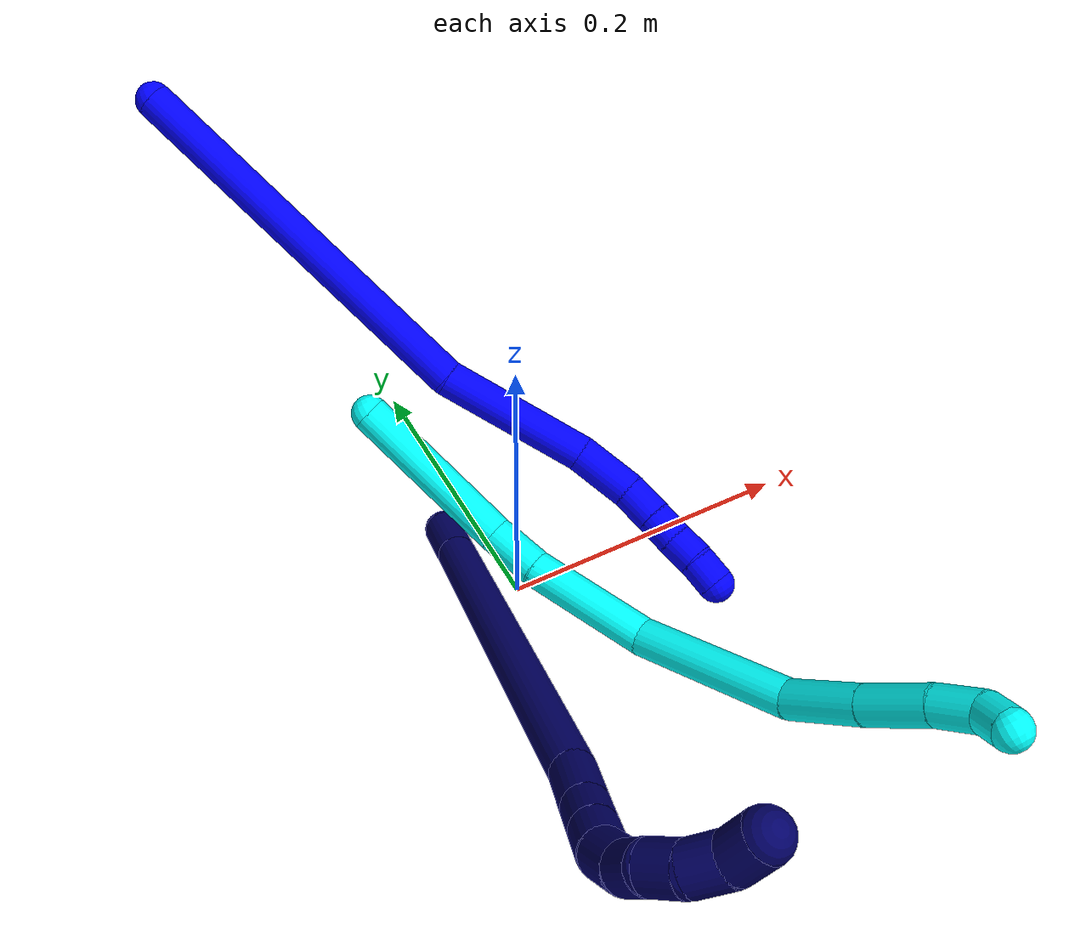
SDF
<sdf version="1.7">
 <world name="default">
  <model name="1">
   <static>0</static>
   <link name="1">
    <collision name="collision-cylinder-e_1_1_4">
     <pose>0.022245 -0.037599 -0.127592 2.85502 0.165702 1.04455</pose>
     <geometry><cylinder><radius>0.0125</radius><length>0.269728</length></cylinder></geometry>
     <surface>
      <friction><ode><mu>1.16</mu><mu2>1.16</mu2><slip1>0</slip1><slip2>0</slip2></ode></friction>
      <contact><ode><kp>1e+06</kp><kd>1</kd><max_vel>0</max_vel><min_depth>0.001</min_depth></ode></contact>
     </surface>
    </collision>
    <visual name="visual-cylinder-e_1_1_4">
     <pose>0.022245 -0.037599 -0.127592 2.85502 0.165702 1.04455</pose>
     <geometry><cylinder><radius>0.0125</radius><length>0.269728</length></cylinder></geometry>
     <material><ambient>0 0 1 1</ambient></material>
    </visual>
    <collision name="collision-cylinder-e_2_4_5">
     <pose>0.063211 -0.095388 -0.299077 2.71047 0.369663 1.41346</pose>
     <geometry><cylinder><radius>0.0125</radius><length>0.103628</length></cylinder></geometry>
     <surface>
      <friction><ode><mu>1.16</mu><mu2>1.16</mu2><slip1>0</slip1><slip2>0</slip2></ode></friction>
      <contact><ode><kp>1e+06</kp><kd>1</kd><max_vel>0</max_vel><min_depth>0.001</min_depth></ode></contact>
     </surface>
    </collision>
    <visual name="visual-cylinder-e_2_4_5">
     <pose>0.063211 -0.095388 -0.299077 2.71047 0.369663 1.41346</pose>
     <geometry><cylinder><radius>0.0125</radius><length>0.103628</length></cylinder></geometry>
     <material><ambient>0 0 1 1</ambient></material>
    </visual>
    <collision name="collision-cylinder-e_3_5_6">
     <pose>0.084246 -0.124979 -0.361349 2.66876 0.11165 0.455844</pose>
     <geometry><cylinder><radius>0.0125</radius><length>0.041546</length></cylinder></geometry>
     <surface>
      <friction><ode><mu>1.16</mu><mu2>1.16</mu2><slip1>0</slip1><slip2>0</slip2></ode></friction>
      <contact><ode><kp>1e+06</kp><kd>1</kd><max_vel>0</max_vel><min_depth>0.001</min_depth></ode></contact>
     </surface>
    </collision>
    <visual name="visual-cylinder-e_3_5_6">
     <pose>0.084246 -0.124979 -0.361349 2.66876 0.11165 0.455844</pose>
     <geometry><cylinder><radius>0.0125</radius><length>0.041546</length></cylinder></geometry>
     <material><ambient>0 0 1 1</ambient></material>
    </visual>
    <collision name="collision-cylinder-e_4_6_7">
     <pose>0.08599 -0.139344 -0.390647 2.71499 -0.047545 -0.218676</pose>
     <geometry><cylinder><radius>0.0125</radius><length>0.024016</length></cylinder></geometry>
     <surface>
      <friction><ode><mu>1.16</mu><mu2>1.16</mu2><slip1>0</slip1><slip2>0</slip2></ode></friction>
      <contact><ode><kp>1e+06</kp><kd>1</kd><max_vel>0</max_vel><min_depth>0.001</min_depth></ode></contact>
     </surface>
    </collision>
    <visual name="visual-cylinder-e_4_6_7">
     <pose>0.08599 -0.139344 -0.390647 2.71499 -0.047545 -0.218676</pose>
     <geometry><cylinder><radius>0.0125</radius><length>0.024016</length></cylinder></geometry>
     <material><ambient>0 0 1 1</ambient></material>
    </visual>
    <collision name="collision-cylinder-e_5_7_8">
     <pose>0.085003 -0.148389 -0.411217 2.74144 -0.039653 -0.194946</pose>
     <geometry><cylinder><radius>0.0125</radius><length>0.020974</length></cylinder></geometry>
     <surface>
      <friction><ode><mu>1.16</mu><mu2>1.16</mu2><slip1>0</slip1><slip2>0</slip2></ode></friction>
      <contact><ode><kp>1e+06</kp><kd>1</kd><max_vel>0</max_vel><min_depth>0.001</min_depth></ode></contact>
     </surface>
    </collision>
    <visual name="visual-cylinder-e_5_7_8">
     <pose>0.085003 -0.148389 -0.411217 2.74144 -0.039653 -0.194946</pose>
     <geometry><cylinder><radius>0.0125</radius><length>0.020974</length></cylinder></geometry>
     <material><ambient>0 0 1 1</ambient></material>
    </visual>
    <collision name="collision-cylinder-e_6_8_9">
     <pose>0.083624 -0.15733 -0.429576 2.63262 -0.096353 -0.366539</pose>
     <geometry><cylinder><radius>0.0125</radius><length>0.020037</length></cylinder></geometry>
     <surface>
      <friction><ode><mu>1.16</mu><mu2>1.16</mu2><slip1>0</slip1><slip2>0</slip2></ode></friction>
      <contact><ode><kp>1e+06</kp><kd>1</kd><max_vel>0</max_vel><min_depth>0.001</min_depth></ode></contact>
     </surface>
    </collision>
    <visual name="visual-cylinder-e_6_8_9">
     <pose>0.083624 -0.15733 -0.429576 2.63262 -0.096353 -0.366539</pose>
     <geometry><cylinder><radius>0.0125</radius><length>0.020037</length></cylinder></geometry>
     <material><ambient>0 0 1 1</ambient></material>
    </visual>
    <collision name="collision-cylinder-e_7_9_2">
     <pose>0.081915 -0.16565 -0.447674 2.78842 -0.074276 -0.410567</pose>
     <geometry><cylinder><radius>0.0125</radius><length>0.020072</length></cylinder></geometry>
     <surface>
      <friction><ode><mu>1.16</mu><mu2>1.16</mu2><slip1>0</slip1><slip2>0</slip2></ode></friction>
      <contact><ode><kp>1e+06</kp><kd>1</kd><max_vel>0</max_vel><min_depth>0.001</min_depth></ode></contact>
     </surface>
    </collision>
    <visual name="visual-cylinder-e_7_9_2">
     <pose>0.081915 -0.16565 -0.447674 2.78842 -0.074276 -0.410567</pose>
     <geometry><cylinder><radius>0.0125</radius><length>0.020072</length></cylinder></geometry>
     <material><ambient>0 0 1 1</ambient></material>
    </visual>
    <collision name="collision-sphere-2">
     <pose>0.08117 -0.169112 -0.457065 0 -0 0</pose>
     <geometry><sphere><radius>0.0125</radius></sphere></geometry>
     <surface>
      <friction><ode><mu>1.16</mu><mu2>1.16</mu2><slip1>0</slip1><slip2>0</slip2></ode></friction>
      <contact><ode><kp>1e+06</kp><kd>1</kd><max_vel>0</max_vel><min_depth>0.001</min_depth></ode></contact>
     </surface>
    </collision>
    <visual name="visual-sphere-2">
     <pose>0.08117 -0.169112 -0.457065 0 -0 0</pose>
     <geometry><sphere><radius>0.0125</radius></sphere></geometry>
     <material><ambient>0 0 1 1</ambient></material>
    </visual>
    <collision name="collision-sphere-9">
     <pose>0.08266 -0.162189 -0.438284 0 -0 0</pose>
     <geometry><sphere><radius>0.0125</radius></sphere></geometry>
     <surface>
      <friction><ode><mu>1.16</mu><mu2>1.16</mu2><slip1>0</slip1><slip2>0</slip2></ode></friction>
      <contact><ode><kp>1e+06</kp><kd>1</kd><max_vel>0</max_vel><min_depth>0.001</min_depth></ode></contact>
     </surface>
    </collision>
    <visual name="visual-sphere-9">
     <pose>0.08266 -0.162189 -0.438284 0 -0 0</pose>
     <geometry><sphere><radius>0.0125</radius></sphere></geometry>
     <material><ambient>0 0 1 1</ambient></material>
    </visual>
    <collision name="collision-sphere-4">
     <pose>0.04449 -0.075197 -0.255184 0 -0 0</pose>
     <geometry><sphere><radius>0.0125</radius></sphere></geometry>
     <surface>
      <friction><ode><mu>1.16</mu><mu2>1.16</mu2><slip1>0</slip1><slip2>0</slip2></ode></friction>
      <contact><ode><kp>1e+06</kp><kd>1</kd><max_vel>0</max_vel><min_depth>0.001</min_depth></ode></contact>
     </surface>
    </collision>
    <visual name="visual-sphere-4">
     <pose>0.04449 -0.075197 -0.255184 0 -0 0</pose>
     <geometry><sphere><radius>0.0125</radius></sphere></geometry>
     <material><ambient>0 0 1 1</ambient></material>
    </visual>
    <collision name="collision-sphere-1">
     <geometry><sphere><radius>0.0125</radius></sphere></geometry>
     <surface>
      <friction><ode><mu>1.16</mu><mu2>1.16</mu2><slip1>0</slip1><slip2>0</slip2></ode></friction>
      <contact><ode><kp>1e+06</kp><kd>1</kd><max_vel>0</max_vel><min_depth>0.001</min_depth></ode></contact>
     </surface>
    </collision>
    <visual name="visual-sphere-1">
     <geometry><sphere><radius>0.0125</radius></sphere></geometry>
     <material><ambient>0 0 1 1</ambient></material>
    </visual>
    <collision name="collision-sphere-8">
     <pose>0.084587 -0.152471 -0.420868 0 -0 0</pose>
     <geometry><sphere><radius>0.0125</radius></sphere></geometry>
     <surface>
      <friction><ode><mu>1.16</mu><mu2>1.16</mu2><slip1>0</slip1><slip2>0</slip2></ode></friction>
      <contact><ode><kp>1e+06</kp><kd>1</kd><max_vel>0</max_vel><min_depth>0.001</min_depth></ode></contact>
     </surface>
    </collision>
    <visual name="visual-sphere-8">
     <pose>0.084587 -0.152471 -0.420868 0 -0 0</pose>
     <geometry><sphere><radius>0.0125</radius></sphere></geometry>
     <material><ambient>0 0 1 1</ambient></material>
    </visual>
    <collision name="collision-sphere-5">
     <pose>0.081931 -0.115578 -0.34297 0 -0 0</pose>
     <geometry><sphere><radius>0.0125</radius></sphere></geometry>
     <surface>
      <friction><ode><mu>1.16</mu><mu2>1.16</mu2><slip1>0</slip1><slip2>0</slip2></ode></friction>
      <contact><ode><kp>1e+06</kp><kd>1</kd><max_vel>0</max_vel><min_depth>0.001</min_depth></ode></contact>
     </surface>
    </collision>
    <visual name="visual-sphere-5">
     <pose>0.081931 -0.115578 -0.34297 0 -0 0</pose>
     <geometry><sphere><radius>0.0125</radius></sphere></geometry>
     <material><ambient>0 0 1 1</ambient></material>
    </visual>
    <collision name="collision-sphere-6">
     <pose>0.08656 -0.134381 -0.379728 0 -0 0</pose>
     <geometry><sphere><radius>0.0125</radius></sphere></geometry>
     <surface>
      <friction><ode><mu>1.16</mu><mu2>1.16</mu2><slip1>0</slip1><slip2>0</slip2></ode></friction>
      <contact><ode><kp>1e+06</kp><kd>1</kd><max_vel>0</max_vel><min_depth>0.001</min_depth></ode></contact>
     </surface>
    </collision>
    <visual name="visual-sphere-6">
     <pose>0.08656 -0.134381 -0.379728 0 -0 0</pose>
     <geometry><sphere><radius>0.0125</radius></sphere></geometry>
     <material><ambient>0 0 1 1</ambient></material>
    </visual>
    <collision name="collision-sphere-7">
     <pose>0.085419 -0.144307 -0.401566 0 -0 0</pose>
     <geometry><sphere><radius>0.0125</radius></sphere></geometry>
     <surface>
      <friction><ode><mu>1.16</mu><mu2>1.16</mu2><slip1>0</slip1><slip2>0</slip2></ode></friction>
      <contact><ode><kp>1e+06</kp><kd>1</kd><max_vel>0</max_vel><min_depth>0.001</min_depth></ode></contact>
     </surface>
    </collision>
    <visual name="visual-sphere-7">
     <pose>0.085419 -0.144307 -0.401566 0 -0 0</pose>
     <geometry><sphere><radius>0.0125</radius></sphere></geometry>
     <material><ambient>0 0 1 1</ambient></material>
    </visual>
    <inertial>
     <pose>0.046437 -0.076309 -0.23204 0 -0 0</pose>
     <mass>0.5</mass>
     <inertia>
      <ixx>0.002343</ixx>
      <ixy>0</ixy>
      <ixz>0</ixz>
      <iyy>0.000743</iyy>
      <iyz>0</iyz>
      <izz>0.00016</izz>
     </inertia>
    </inertial>
   </link>
   <pose>-0.104987 0.320848 0.228317 -0.785567 0.234089 0.444727</pose>
  </model>
  <model name="3">
   <static>0</static>
   <link name="3">
    <collision name="collision-cylinder-e_1_1_4">
     <pose>-0.001387 -0.022854 0.053399 0.404406 -0.023867 -0.004893</pose>
     <geometry><cylinder><radius>0.0125</radius><length>0.116201</length></cylinder></geometry>
     <surface>
      <friction><ode><mu>1.16</mu><mu2>1.16</mu2><slip1>0</slip1><slip2>0</slip2></ode></friction>
      <contact><ode><kp>1e+06</kp><kd>1</kd><max_vel>0</max_vel><min_depth>0.001</min_depth></ode></contact>
     </surface>
    </collision>
    <visual name="visual-cylinder-e_1_1_4">
     <pose>-0.001387 -0.022854 0.053399 0.404406 -0.023867 -0.004893</pose>
     <geometry><cylinder><radius>0.0125</radius><length>0.116201</length></cylinder></geometry>
     <material><ambient>0.003922 1 0.996078 1</ambient></material>
    </visual>
    <collision name="collision-cylinder-e_2_4_5">
     <pose>0.003247 -0.05005 0.123797 0.250008 0.330556 0.041914</pose>
     <geometry><cylinder><radius>0.0125</radius><length>0.037098</length></cylinder></geometry>
     <surface>
      <friction><ode><mu>1.16</mu><mu2>1.16</mu2><slip1>0</slip1><slip2>0</slip2></ode></friction>
      <contact><ode><kp>1e+06</kp><kd>1</kd><max_vel>0</max_vel><min_depth>0.001</min_depth></ode></contact>
     </surface>
    </collision>
    <visual name="visual-cylinder-e_2_4_5">
     <pose>0.003247 -0.05005 0.123797 0.250008 0.330556 0.041914</pose>
     <geometry><cylinder><radius>0.0125</radius><length>0.037098</length></cylinder></geometry>
     <material><ambient>0.003922 1 0.996078 1</ambient></material>
    </visual>
    <collision name="collision-cylinder-e_3_5_6">
     <pose>0.024852 -0.06901 0.176979 0.383991 0.379937 0.074723</pose>
     <geometry><cylinder><radius>0.0125</radius><length>0.084043</length></cylinder></geometry>
     <surface>
      <friction><ode><mu>1.16</mu><mu2>1.16</mu2><slip1>0</slip1><slip2>0</slip2></ode></friction>
      <contact><ode><kp>1e+06</kp><kd>1</kd><max_vel>0</max_vel><min_depth>0.001</min_depth></ode></contact>
     </surface>
    </collision>
    <visual name="visual-cylinder-e_3_5_6">
     <pose>0.024852 -0.06901 0.176979 0.383991 0.379937 0.074723</pose>
     <geometry><cylinder><radius>0.0125</radius><length>0.084043</length></cylinder></geometry>
     <material><ambient>0.003922 1 0.996078 1</ambient></material>
    </visual>
    <collision name="collision-cylinder-e_4_6_7">
     <pose>0.078587 -0.094205 0.251141 0.271561 0.769002 0.110453</pose>
     <geometry><cylinder><radius>0.0125</radius><length>0.10972</length></cylinder></geometry>
     <surface>
      <friction><ode><mu>1.16</mu><mu2>1.16</mu2><slip1>0</slip1><slip2>0</slip2></ode></friction>
      <contact><ode><kp>1e+06</kp><kd>1</kd><max_vel>0</max_vel><min_depth>0.001</min_depth></ode></contact>
     </surface>
    </collision>
    <visual name="visual-cylinder-e_4_6_7">
     <pose>0.078587 -0.094205 0.251141 0.271561 0.769002 0.110453</pose>
     <geometry><cylinder><radius>0.0125</radius><length>0.10972</length></cylinder></geometry>
     <material><ambient>0.003922 1 0.996078 1</ambient></material>
    </visual>
    <collision name="collision-cylinder-e_5_7_8">
     <pose>0.141919 -0.108286 0.299918 0.313995 1.14719 0.203831</pose>
     <geometry><cylinder><radius>0.0125</radius><length>0.055246</length></cylinder></geometry>
     <surface>
      <friction><ode><mu>1.16</mu><mu2>1.16</mu2><slip1>0</slip1><slip2>0</slip2></ode></friction>
      <contact><ode><kp>1e+06</kp><kd>1</kd><max_vel>0</max_vel><min_depth>0.001</min_depth></ode></contact>
     </surface>
    </collision>
    <visual name="visual-cylinder-e_5_7_8">
     <pose>0.141919 -0.108286 0.299918 0.313995 1.14719 0.203831</pose>
     <geometry><cylinder><radius>0.0125</radius><length>0.055246</length></cylinder></geometry>
     <material><ambient>0.003922 1 0.996078 1</ambient></material>
    </visual>
    <collision name="collision-cylinder-e_6_8_9">
     <pose>0.188592 -0.115598 0.318684 0.445528 1.18103 0.301377</pose>
     <geometry><cylinder><radius>0.0125</radius><length>0.046469</length></cylinder></geometry>
     <surface>
      <friction><ode><mu>1.16</mu><mu2>1.16</mu2><slip1>0</slip1><slip2>0</slip2></ode></friction>
      <contact><ode><kp>1e+06</kp><kd>1</kd><max_vel>0</max_vel><min_depth>0.001</min_depth></ode></contact>
     </surface>
    </collision>
    <visual name="visual-cylinder-e_6_8_9">
     <pose>0.188592 -0.115598 0.318684 0.445528 1.18103 0.301377</pose>
     <geometry><cylinder><radius>0.0125</radius><length>0.046469</length></cylinder></geometry>
     <material><ambient>0.003922 1 0.996078 1</ambient></material>
    </visual>
    <collision name="collision-cylinder-e_7_9_10">
     <pose>0.222903 -0.121944 0.333495 0.355625 1.05304 0.20816</pose>
     <geometry><cylinder><radius>0.0125</radius><length>0.029504</length></cylinder></geometry>
     <surface>
      <friction><ode><mu>1.16</mu><mu2>1.16</mu2><slip1>0</slip1><slip2>0</slip2></ode></friction>
      <contact><ode><kp>1e+06</kp><kd>1</kd><max_vel>0</max_vel><min_depth>0.001</min_depth></ode></contact>
     </surface>
    </collision>
    <visual name="visual-cylinder-e_7_9_10">
     <pose>0.222903 -0.121944 0.333495 0.355625 1.05304 0.20816</pose>
     <geometry><cylinder><radius>0.0125</radius><length>0.029504</length></cylinder></geometry>
     <material><ambient>0.003922 1 0.996078 1</ambient></material>
    </visual>
    <collision name="collision-cylinder-e_8_10_2">
     <pose>0.244204 -0.121105 0.346215 -0.522229 0.896573 -0.25563</pose>
     <geometry><cylinder><radius>0.0125</radius><length>0.021718</length></cylinder></geometry>
     <surface>
      <friction><ode><mu>1.16</mu><mu2>1.16</mu2><slip1>0</slip1><slip2>0</slip2></ode></friction>
      <contact><ode><kp>1e+06</kp><kd>1</kd><max_vel>0</max_vel><min_depth>0.001</min_depth></ode></contact>
     </surface>
    </collision>
    <visual name="visual-cylinder-e_8_10_2">
     <pose>0.244204 -0.121105 0.346215 -0.522229 0.896573 -0.25563</pose>
     <geometry><cylinder><radius>0.0125</radius><length>0.021718</length></cylinder></geometry>
     <material><ambient>0.003922 1 0.996078 1</ambient></material>
    </visual>
    <collision name="collision-sphere-2">
     <pose>0.252687 -0.117723 0.35209 0 -0 0</pose>
     <geometry><sphere><radius>0.0125</radius></sphere></geometry>
     <surface>
      <friction><ode><mu>1.16</mu><mu2>1.16</mu2><slip1>0</slip1><slip2>0</slip2></ode></friction>
      <contact><ode><kp>1e+06</kp><kd>1</kd><max_vel>0</max_vel><min_depth>0.001</min_depth></ode></contact>
     </surface>
    </collision>
    <visual name="visual-sphere-2">
     <pose>0.252687 -0.117723 0.35209 0 -0 0</pose>
     <geometry><sphere><radius>0.0125</radius></sphere></geometry>
     <material><ambient>0.003922 1 0.996078 1</ambient></material>
    </visual>
    <collision name="collision-sphere-10">
     <pose>0.235721 -0.124486 0.340339 0 -0 0</pose>
     <geometry><sphere><radius>0.0125</radius></sphere></geometry>
     <surface>
      <friction><ode><mu>1.16</mu><mu2>1.16</mu2><slip1>0</slip1><slip2>0</slip2></ode></friction>
      <contact><ode><kp>1e+06</kp><kd>1</kd><max_vel>0</max_vel><min_depth>0.001</min_depth></ode></contact>
     </surface>
    </collision>
    <visual name="visual-sphere-10">
     <pose>0.235721 -0.124486 0.340339 0 -0 0</pose>
     <geometry><sphere><radius>0.0125</radius></sphere></geometry>
     <material><ambient>0.003922 1 0.996078 1</ambient></material>
    </visual>
    <collision name="collision-sphere-9">
     <pose>0.210084 -0.119402 0.32665 0 -0 0</pose>
     <geometry><sphere><radius>0.0125</radius></sphere></geometry>
     <surface>
      <friction><ode><mu>1.16</mu><mu2>1.16</mu2><slip1>0</slip1><slip2>0</slip2></ode></friction>
      <contact><ode><kp>1e+06</kp><kd>1</kd><max_vel>0</max_vel><min_depth>0.001</min_depth></ode></contact>
     </surface>
    </collision>
    <visual name="visual-sphere-9">
     <pose>0.210084 -0.119402 0.32665 0 -0 0</pose>
     <geometry><sphere><radius>0.0125</radius></sphere></geometry>
     <material><ambient>0.003922 1 0.996078 1</ambient></material>
    </visual>
    <collision name="collision-sphere-4">
     <pose>-0.002773 -0.045709 0.106797 0 -0 0</pose>
     <geometry><sphere><radius>0.0125</radius></sphere></geometry>
     <surface>
      <friction><ode><mu>1.16</mu><mu2>1.16</mu2><slip1>0</slip1><slip2>0</slip2></ode></friction>
      <contact><ode><kp>1e+06</kp><kd>1</kd><max_vel>0</max_vel><min_depth>0.001</min_depth></ode></contact>
     </surface>
    </collision>
    <visual name="visual-sphere-4">
     <pose>-0.002773 -0.045709 0.106797 0 -0 0</pose>
     <geometry><sphere><radius>0.0125</radius></sphere></geometry>
     <material><ambient>0.003922 1 0.996078 1</ambient></material>
    </visual>
    <collision name="collision-sphere-1">
     <geometry><sphere><radius>0.0125</radius></sphere></geometry>
     <surface>
      <friction><ode><mu>1.16</mu><mu2>1.16</mu2><slip1>0</slip1><slip2>0</slip2></ode></friction>
      <contact><ode><kp>1e+06</kp><kd>1</kd><max_vel>0</max_vel><min_depth>0.001</min_depth></ode></contact>
     </surface>
    </collision>
    <visual name="visual-sphere-1">
     <geometry><sphere><radius>0.0125</radius></sphere></geometry>
     <material><ambient>0.003922 1 0.996078 1</ambient></material>
    </visual>
    <collision name="collision-sphere-8">
     <pose>0.167101 -0.111793 0.310717 0 -0 0</pose>
     <geometry><sphere><radius>0.0125</radius></sphere></geometry>
     <surface>
      <friction><ode><mu>1.16</mu><mu2>1.16</mu2><slip1>0</slip1><slip2>0</slip2></ode></friction>
      <contact><ode><kp>1e+06</kp><kd>1</kd><max_vel>0</max_vel><min_depth>0.001</min_depth></ode></contact>
     </surface>
    </collision>
    <visual name="visual-sphere-8">
     <pose>0.167101 -0.111793 0.310717 0 -0 0</pose>
     <geometry><sphere><radius>0.0125</radius></sphere></geometry>
     <material><ambient>0.003922 1 0.996078 1</ambient></material>
    </visual>
    <collision name="collision-sphere-5">
     <pose>0.009268 -0.054391 0.140796 0 -0 0</pose>
     <geometry><sphere><radius>0.0125</radius></sphere></geometry>
     <surface>
      <friction><ode><mu>1.16</mu><mu2>1.16</mu2><slip1>0</slip1><slip2>0</slip2></ode></friction>
      <contact><ode><kp>1e+06</kp><kd>1</kd><max_vel>0</max_vel><min_depth>0.001</min_depth></ode></contact>
     </surface>
    </collision>
    <visual name="visual-sphere-5">
     <pose>0.009268 -0.054391 0.140796 0 -0 0</pose>
     <geometry><sphere><radius>0.0125</radius></sphere></geometry>
     <material><ambient>0.003922 1 0.996078 1</ambient></material>
    </visual>
    <collision name="collision-sphere-6">
     <pose>0.040436 -0.08363 0.213163 0 -0 0</pose>
     <geometry><sphere><radius>0.0125</radius></sphere></geometry>
     <surface>
      <friction><ode><mu>1.16</mu><mu2>1.16</mu2><slip1>0</slip1><slip2>0</slip2></ode></friction>
      <contact><ode><kp>1e+06</kp><kd>1</kd><max_vel>0</max_vel><min_depth>0.001</min_depth></ode></contact>
     </surface>
    </collision>
    <visual name="visual-sphere-6">
     <pose>0.040436 -0.08363 0.213163 0 -0 0</pose>
     <geometry><sphere><radius>0.0125</radius></sphere></geometry>
     <material><ambient>0.003922 1 0.996078 1</ambient></material>
    </visual>
    <collision name="collision-sphere-7">
     <pose>0.116738 -0.104779 0.289118 0 -0 0</pose>
     <geometry><sphere><radius>0.0125</radius></sphere></geometry>
     <surface>
      <friction><ode><mu>1.16</mu><mu2>1.16</mu2><slip1>0</slip1><slip2>0</slip2></ode></friction>
      <contact><ode><kp>1e+06</kp><kd>1</kd><max_vel>0</max_vel><min_depth>0.001</min_depth></ode></contact>
     </surface>
    </collision>
    <visual name="visual-sphere-7">
     <pose>0.116738 -0.104779 0.289118 0 -0 0</pose>
     <geometry><sphere><radius>0.0125</radius></sphere></geometry>
     <material><ambient>0.003922 1 0.996078 1</ambient></material>
    </visual>
    <inertial>
     <pose>0.07831 -0.076461 0.203927 0 -0 0</pose>
     <mass>0.5</mass>
     <inertia><ixx>0.000319</ixx><ixy>0</ixy><ixz>0</ixz><iyy>0.000328</iyy><iyz>0</iyz><izz>0</izz></inertia>
    </inertial>
   </link>
   <pose>-0.048947 0.11775 0.085623 2.72365 -1.07106 -1.06118</pose>
  </model>
  <model name="7">
   <static>0</static>
   <link name="7">
    <collision name="collision-cylinder-e_1_1_4">
     <pose>-0.003949 -0.015179 0.015048 0.789741 -0.182694 -0.076315</pose>
     <geometry><cylinder><radius>0.0125</radius><length>0.043472</length></cylinder></geometry>
     <surface>
      <friction><ode><mu>1.16</mu><mu2>1.16</mu2><slip1>0</slip1><slip2>0</slip2></ode></friction>
      <contact><ode><kp>1e+06</kp><kd>1</kd><max_vel>0</max_vel><min_depth>0.001</min_depth></ode></contact>
     </surface>
    </collision>
    <visual name="visual-cylinder-e_1_1_4">
     <pose>-0.003949 -0.015179 0.015048 0.789741 -0.182694 -0.076315</pose>
     <geometry><cylinder><radius>0.0125</radius><length>0.043472</length></cylinder></geometry>
     <material><ambient>0.003922 0 0.403922 1</ambient></material>
    </visual>
    <collision name="collision-cylinder-e_2_4_5">
     <pose>-0.031707 -0.124762 0.121276 0.802761 -0.179457 -0.076333</pose>
     <geometry><cylinder><radius>0.0125</radius><length>0.266779</length></cylinder></geometry>
     <surface>
      <friction><ode><mu>1.16</mu><mu2>1.16</mu2><slip1>0</slip1><slip2>0</slip2></ode></friction>
      <contact><ode><kp>1e+06</kp><kd>1</kd><max_vel>0</max_vel><min_depth>0.001</min_depth></ode></contact>
     </surface>
    </collision>
    <visual name="visual-cylinder-e_2_4_5">
     <pose>-0.031707 -0.124762 0.121276 0.802761 -0.179457 -0.076333</pose>
     <geometry><cylinder><radius>0.0125</radius><length>0.266779</length></cylinder></geometry>
     <material><ambient>0.003922 0 0.403922 1</ambient></material>
    </visual>
    <collision name="collision-cylinder-e_3_5_6">
     <pose>-0.060882 -0.230172 0.22516 0.714031 -0.309001 -0.116053</pose>
     <geometry><cylinder><radius>0.0125</radius><length>0.035288</length></cylinder></geometry>
     <surface>
      <friction><ode><mu>1.16</mu><mu2>1.16</mu2><slip1>0</slip1><slip2>0</slip2></ode></friction>
      <contact><ode><kp>1e+06</kp><kd>1</kd><max_vel>0</max_vel><min_depth>0.001</min_depth></ode></contact>
     </surface>
    </collision>
    <visual name="visual-cylinder-e_3_5_6">
     <pose>-0.060882 -0.230172 0.22516 0.714031 -0.309001 -0.116053</pose>
     <geometry><cylinder><radius>0.0125</radius><length>0.035288</length></cylinder></geometry>
     <material><ambient>0.003922 0 0.403922 1</ambient></material>
    </visual>
    <collision name="collision-cylinder-e_4_6_7">
     <pose>-0.070307 -0.248212 0.247418 0.634444 -0.329613 -0.109097</pose>
     <geometry><cylinder><radius>0.0125</radius><length>0.025079</length></cylinder></geometry>
     <surface>
      <friction><ode><mu>1.16</mu><mu2>1.16</mu2><slip1>0</slip1><slip2>0</slip2></ode></friction>
      <contact><ode><kp>1e+06</kp><kd>1</kd><max_vel>0</max_vel><min_depth>0.001</min_depth></ode></contact>
     </surface>
    </collision>
    <visual name="visual-cylinder-e_4_6_7">
     <pose>-0.070307 -0.248212 0.247418 0.634444 -0.329613 -0.109097</pose>
     <geometry><cylinder><radius>0.0125</radius><length>0.025079</length></cylinder></geometry>
     <material><ambient>0.003922 0 0.403922 1</ambient></material>
    </visual>
    <collision name="collision-cylinder-e_5_7_8">
     <pose>-0.078165 -0.261784 0.265985 0.627744 -0.32889 -0.107627</pose>
     <geometry><cylinder><radius>0.0125</radius><length>0.023529</length></cylinder></geometry>
     <surface>
      <friction><ode><mu>1.16</mu><mu2>1.16</mu2><slip1>0</slip1><slip2>0</slip2></ode></friction>
      <contact><ode><kp>1e+06</kp><kd>1</kd><max_vel>0</max_vel><min_depth>0.001</min_depth></ode></contact>
     </surface>
    </collision>
    <visual name="visual-cylinder-e_5_7_8">
     <pose>-0.078165 -0.261784 0.265985 0.627744 -0.32889 -0.107627</pose>
     <geometry><cylinder><radius>0.0125</radius><length>0.023529</length></cylinder></geometry>
     <material><ambient>0.003922 0 0.403922 1</ambient></material>
    </visual>
    <collision name="collision-cylinder-e_6_8_9">
     <pose>-0.083173 -0.273823 0.286085 0.460407 -0.097288 -0.022817</pose>
     <geometry><cylinder><radius>0.0125</radius><length>0.024874</length></cylinder></geometry>
     <surface>
      <friction><ode><mu>1.16</mu><mu2>1.16</mu2><slip1>0</slip1><slip2>0</slip2></ode></friction>
      <contact><ode><kp>1e+06</kp><kd>1</kd><max_vel>0</max_vel><min_depth>0.001</min_depth></ode></contact>
     </surface>
    </collision>
    <visual name="visual-cylinder-e_6_8_9">
     <pose>-0.083173 -0.273823 0.286085 0.460407 -0.097288 -0.022817</pose>
     <geometry><cylinder><radius>0.0125</radius><length>0.024874</length></cylinder></geometry>
     <material><ambient>0.003922 0 0.403922 1</ambient></material>
    </visual>
    <collision name="collision-cylinder-e_7_9_10">
     <pose>-0.084393 -0.281291 0.307097 0.195845 -0.001126 -0.000111</pose>
     <geometry><cylinder><radius>0.0125</radius><length>0.020232</length></cylinder></geometry>
     <surface>
      <friction><ode><mu>1.16</mu><mu2>1.16</mu2><slip1>0</slip1><slip2>0</slip2></ode></friction>
      <contact><ode><kp>1e+06</kp><kd>1</kd><max_vel>0</max_vel><min_depth>0.001</min_depth></ode></contact>
     </surface>
    </collision>
    <visual name="visual-cylinder-e_7_9_10">
     <pose>-0.084393 -0.281291 0.307097 0.195845 -0.001126 -0.000111</pose>
     <geometry><cylinder><radius>0.0125</radius><length>0.020232</length></cylinder></geometry>
     <material><ambient>0.003922 0 0.403922 1</ambient></material>
    </visual>
    <collision name="collision-cylinder-e_8_10_11">
     <pose>-0.080668 -0.286314 0.325909 0.33094 0.378318 0.063921</pose>
     <geometry><cylinder><radius>0.0125</radius><length>0.020229</length></cylinder></geometry>
     <surface>
      <friction><ode><mu>1.16</mu><mu2>1.16</mu2><slip1>0</slip1><slip2>0</slip2></ode></friction>
      <contact><ode><kp>1e+06</kp><kd>1</kd><max_vel>0</max_vel><min_depth>0.001</min_depth></ode></contact>
     </surface>
    </collision>
    <visual name="visual-cylinder-e_8_10_11">
     <pose>-0.080668 -0.286314 0.325909 0.33094 0.378318 0.063921</pose>
     <geometry><cylinder><radius>0.0125</radius><length>0.020229</length></cylinder></geometry>
     <material><ambient>0.003922 0 0.403922 1</ambient></material>
    </visual>
    <collision name="collision-cylinder-e_9_11_12">
     <pose>-0.071214 -0.290118 0.343124 0.089847 0.599956 0.027808</pose>
     <geometry><cylinder><radius>0.0125</radius><length>0.020256</length></cylinder></geometry>
     <surface>
      <friction><ode><mu>1.16</mu><mu2>1.16</mu2><slip1>0</slip1><slip2>0</slip2></ode></friction>
      <contact><ode><kp>1e+06</kp><kd>1</kd><max_vel>0</max_vel><min_depth>0.001</min_depth></ode></contact>
     </surface>
    </collision>
    <visual name="visual-cylinder-e_9_11_12">
     <pose>-0.071214 -0.290118 0.343124 0.089847 0.599956 0.027808</pose>
     <geometry><cylinder><radius>0.0125</radius><length>0.020256</length></cylinder></geometry>
     <material><ambient>0.003922 0 0.403922 1</ambient></material>
    </visual>
    <collision name="collision-cylinder-e_10_12_2">
     <pose>-0.062651 -0.289247 0.361037 -0.167544 0.284562 -0.024056</pose>
     <geometry><cylinder><radius>0.0125</radius><length>0.020262</length></cylinder></geometry>
     <surface>
      <friction><ode><mu>1.16</mu><mu2>1.16</mu2><slip1>0</slip1><slip2>0</slip2></ode></friction>
      <contact><ode><kp>1e+06</kp><kd>1</kd><max_vel>0</max_vel><min_depth>0.001</min_depth></ode></contact>
     </surface>
    </collision>
    <visual name="visual-cylinder-e_10_12_2">
     <pose>-0.062651 -0.289247 0.361037 -0.167544 0.284562 -0.024056</pose>
     <geometry><cylinder><radius>0.0125</radius><length>0.020262</length></cylinder></geometry>
     <material><ambient>0.003922 0 0.403922 1</ambient></material>
    </visual>
    <collision name="collision-sphere-2">
     <pose>-0.059807 -0.287625 0.370625 0 -0 0</pose>
     <geometry><sphere><radius>0.0125</radius></sphere></geometry>
     <surface>
      <friction><ode><mu>1.16</mu><mu2>1.16</mu2><slip1>0</slip1><slip2>0</slip2></ode></friction>
      <contact><ode><kp>1e+06</kp><kd>1</kd><max_vel>0</max_vel><min_depth>0.001</min_depth></ode></contact>
     </surface>
    </collision>
    <visual name="visual-sphere-2">
     <pose>-0.059807 -0.287625 0.370625 0 -0 0</pose>
     <geometry><sphere><radius>0.0125</radius></sphere></geometry>
     <material><ambient>0.003922 0 0.403922 1</ambient></material>
    </visual>
    <collision name="collision-sphere-12">
     <pose>-0.065495 -0.290868 0.35145 0 -0 0</pose>
     <geometry><sphere><radius>0.0125</radius></sphere></geometry>
     <surface>
      <friction><ode><mu>1.16</mu><mu2>1.16</mu2><slip1>0</slip1><slip2>0</slip2></ode></friction>
      <contact><ode><kp>1e+06</kp><kd>1</kd><max_vel>0</max_vel><min_depth>0.001</min_depth></ode></contact>
     </surface>
    </collision>
    <visual name="visual-sphere-12">
     <pose>-0.065495 -0.290868 0.35145 0 -0 0</pose>
     <geometry><sphere><radius>0.0125</radius></sphere></geometry>
     <material><ambient>0.003922 0 0.403922 1</ambient></material>
    </visual>
    <collision name="collision-sphere-11">
     <pose>-0.076932 -0.289368 0.334799 0 -0 0</pose>
     <geometry><sphere><radius>0.0125</radius></sphere></geometry>
     <surface>
      <friction><ode><mu>1.16</mu><mu2>1.16</mu2><slip1>0</slip1><slip2>0</slip2></ode></friction>
      <contact><ode><kp>1e+06</kp><kd>1</kd><max_vel>0</max_vel><min_depth>0.001</min_depth></ode></contact>
     </surface>
    </collision>
    <visual name="visual-sphere-11">
     <pose>-0.076932 -0.289368 0.334799 0 -0 0</pose>
     <geometry><sphere><radius>0.0125</radius></sphere></geometry>
     <material><ambient>0.003922 0 0.403922 1</ambient></material>
    </visual>
    <collision name="collision-sphere-10">
     <pose>-0.084404 -0.28326 0.31702 0 -0 0</pose>
     <geometry><sphere><radius>0.0125</radius></sphere></geometry>
     <surface>
      <friction><ode><mu>1.16</mu><mu2>1.16</mu2><slip1>0</slip1><slip2>0</slip2></ode></friction>
      <contact><ode><kp>1e+06</kp><kd>1</kd><max_vel>0</max_vel><min_depth>0.001</min_depth></ode></contact>
     </surface>
    </collision>
    <visual name="visual-sphere-10">
     <pose>-0.084404 -0.28326 0.31702 0 -0 0</pose>
     <geometry><sphere><radius>0.0125</radius></sphere></geometry>
     <material><ambient>0.003922 0 0.403922 1</ambient></material>
    </visual>
    <collision name="collision-sphere-9">
     <pose>-0.084381 -0.279323 0.297174 0 -0 0</pose>
     <geometry><sphere><radius>0.0125</radius></sphere></geometry>
     <surface>
      <friction><ode><mu>1.16</mu><mu2>1.16</mu2><slip1>0</slip1><slip2>0</slip2></ode></friction>
      <contact><ode><kp>1e+06</kp><kd>1</kd><max_vel>0</max_vel><min_depth>0.001</min_depth></ode></contact>
     </surface>
    </collision>
    <visual name="visual-sphere-9">
     <pose>-0.084381 -0.279323 0.297174 0 -0 0</pose>
     <geometry><sphere><radius>0.0125</radius></sphere></geometry>
     <material><ambient>0.003922 0 0.403922 1</ambient></material>
    </visual>
    <collision name="collision-sphere-4">
     <pose>-0.007898 -0.030358 0.030096 0 -0 0</pose>
     <geometry><sphere><radius>0.0125</radius></sphere></geometry>
     <surface>
      <friction><ode><mu>1.16</mu><mu2>1.16</mu2><slip1>0</slip1><slip2>0</slip2></ode></friction>
      <contact><ode><kp>1e+06</kp><kd>1</kd><max_vel>0</max_vel><min_depth>0.001</min_depth></ode></contact>
     </surface>
    </collision>
    <visual name="visual-sphere-4">
     <pose>-0.007898 -0.030358 0.030096 0 -0 0</pose>
     <geometry><sphere><radius>0.0125</radius></sphere></geometry>
     <material><ambient>0.003922 0 0.403922 1</ambient></material>
    </visual>
    <collision name="collision-sphere-1">
     <geometry><sphere><radius>0.0125</radius></sphere></geometry>
     <surface>
      <friction><ode><mu>1.16</mu><mu2>1.16</mu2><slip1>0</slip1><slip2>0</slip2></ode></friction>
      <contact><ode><kp>1e+06</kp><kd>1</kd><max_vel>0</max_vel><min_depth>0.001</min_depth></ode></contact>
     </surface>
    </collision>
    <visual name="visual-sphere-1">
     <geometry><sphere><radius>0.0125</radius></sphere></geometry>
     <material><ambient>0.003922 0 0.403922 1</ambient></material>
    </visual>
    <collision name="collision-sphere-8">
     <pose>-0.081965 -0.268323 0.274996 0 -0 0</pose>
     <geometry><sphere><radius>0.0125</radius></sphere></geometry>
     <surface>
      <friction><ode><mu>1.16</mu><mu2>1.16</mu2><slip1>0</slip1><slip2>0</slip2></ode></friction>
      <contact><ode><kp>1e+06</kp><kd>1</kd><max_vel>0</max_vel><min_depth>0.001</min_depth></ode></contact>
     </surface>
    </collision>
    <visual name="visual-sphere-8">
     <pose>-0.081965 -0.268323 0.274996 0 -0 0</pose>
     <geometry><sphere><radius>0.0125</radius></sphere></geometry>
     <material><ambient>0.003922 0 0.403922 1</ambient></material>
    </visual>
    <collision name="collision-sphere-5">
     <pose>-0.055517 -0.219165 0.212457 0 -0 0</pose>
     <geometry><sphere><radius>0.0125</radius></sphere></geometry>
     <surface>
      <friction><ode><mu>1.16</mu><mu2>1.16</mu2><slip1>0</slip1><slip2>0</slip2></ode></friction>
      <contact><ode><kp>1e+06</kp><kd>1</kd><max_vel>0</max_vel><min_depth>0.001</min_depth></ode></contact>
     </surface>
    </collision>
    <visual name="visual-sphere-5">
     <pose>-0.055517 -0.219165 0.212457 0 -0 0</pose>
     <geometry><sphere><radius>0.0125</radius></sphere></geometry>
     <material><ambient>0.003922 0 0.403922 1</ambient></material>
    </visual>
    <collision name="collision-sphere-6">
     <pose>-0.066248 -0.24118 0.237862 0 -0 0</pose>
     <geometry><sphere><radius>0.0125</radius></sphere></geometry>
     <surface>
      <friction><ode><mu>1.16</mu><mu2>1.16</mu2><slip1>0</slip1><slip2>0</slip2></ode></friction>
      <contact><ode><kp>1e+06</kp><kd>1</kd><max_vel>0</max_vel><min_depth>0.001</min_depth></ode></contact>
     </surface>
    </collision>
    <visual name="visual-sphere-6">
     <pose>-0.066248 -0.24118 0.237862 0 -0 0</pose>
     <geometry><sphere><radius>0.0125</radius></sphere></geometry>
     <material><ambient>0.003922 0 0.403922 1</ambient></material>
    </visual>
    <collision name="collision-sphere-7">
     <pose>-0.074366 -0.255245 0.256974 0 -0 0</pose>
     <geometry><sphere><radius>0.0125</radius></sphere></geometry>
     <surface>
      <friction><ode><mu>1.16</mu><mu2>1.16</mu2><slip1>0</slip1><slip2>0</slip2></ode></friction>
      <contact><ode><kp>1e+06</kp><kd>1</kd><max_vel>0</max_vel><min_depth>0.001</min_depth></ode></contact>
     </surface>
    </collision>
    <visual name="visual-sphere-7">
     <pose>-0.074366 -0.255245 0.256974 0 -0 0</pose>
     <geometry><sphere><radius>0.0125</radius></sphere></geometry>
     <material><ambient>0.003922 0 0.403922 1</ambient></material>
    </visual>
    <inertial>
     <pose>-0.045003 -0.168964 0.17521 0 -0 0</pose>
     <mass>0.5</mass>
     <inertia>
      <ixx>0.001462</ixx>
      <ixy>0</ixy>
      <ixz>0</ixz>
      <iyy>0.000997</iyy>
      <iyz>0</iyz>
      <izz>0.001456</izz>
     </inertia>
    </inertial>
   </link>
   <pose>-0.024854 0.061519 0.011498 0.3478 0.272553 -0.125947</pose>
  </model>
 </world>
</sdf>
